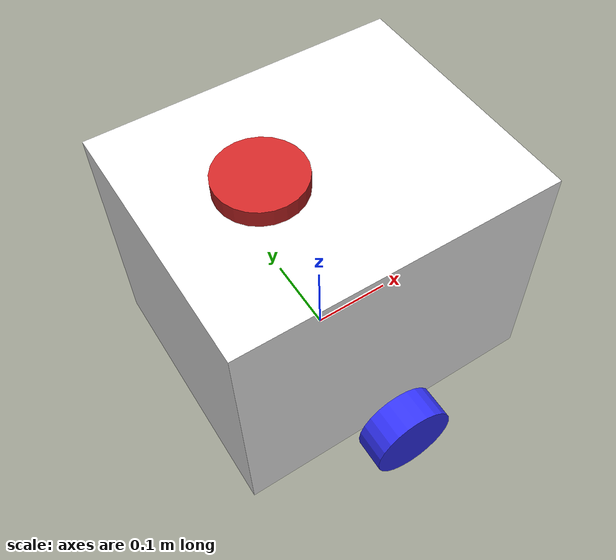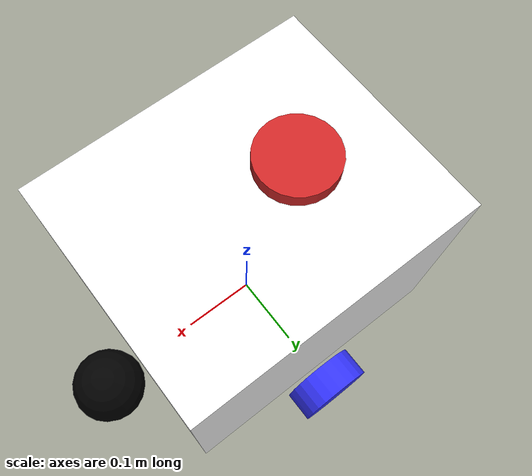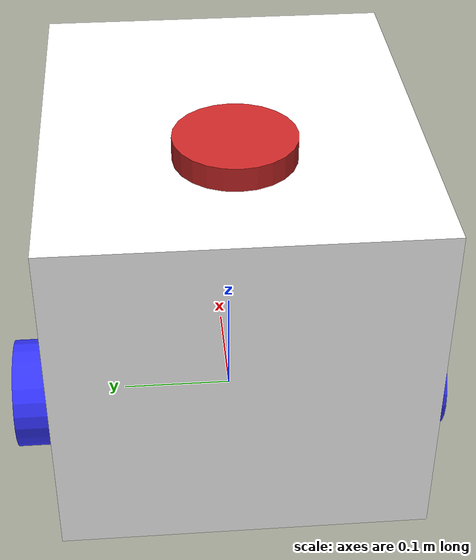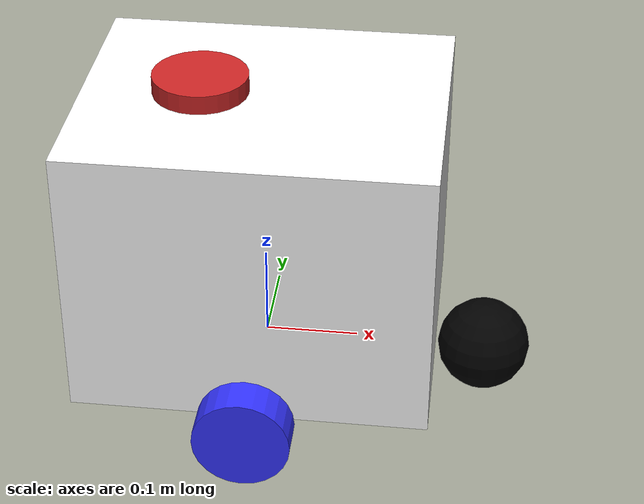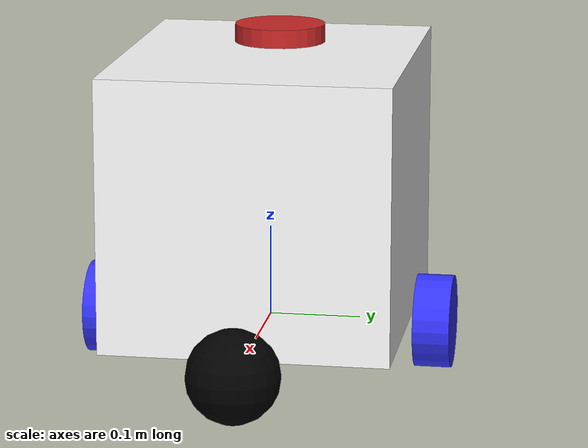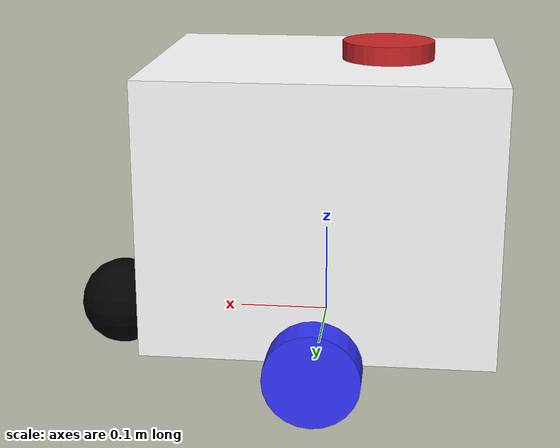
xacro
<?xml version="1.0"?>
<robot xmlns:xacro="http://www.ros.org/wiki/xacro" >

    <xacro:include filename="inertial_macros.xacro"/>

    <material name="white">
        <color rgba="1 1 1 1" />
    </material>

    <material name="orange">
        <color rgba="1 0.3 0.1 1"/>
    </material>

    <material name="blue">
        <color rgba="0.2 0.2 1 1"/>
    </material>

    <material name="black">
        <color rgba="0 0 0 1"/>
    </material>

    <!-- BASE LINK -->

    <link name="base_link">

    </link>

    <joint name="base_footprint_joint" type="fixed">
        <parent link="base_link"/>
        <child link="base_footprint"/>
        <origin xyz="0 0 0" rpy="0 0 0"/>
    </joint>

    <link name="base_footprint">
    </link>

    <!-- CHASSIS LINK -->

    <joint name="chassis_joint" type="fixed">
        <parent link="base_link"/>
        <child link="chassis"/>
        <origin xyz="0 0 0"/>
    </joint>

    <link name="chassis">
        <visual>
            <origin xyz="0 0 0.1475"/>
            <geometry>
                <box size="0.375 0.31 0.295"/>
            </geometry>
            <material name="white"/>
        </visual>
        <collision>
            <origin xyz="0 0 0.1475"/>
            <geometry>
                <box size="0.375 0.31 0.295"/>
            </geometry>
        </collision>
        <xacro:inertial_box mass="0.5" x="0.3" y="0.3" z="0.15">
            <origin xyz="0.15 0 0.075" rpy="0 0 0"/>
        </xacro:inertial_box>
    </link>

    <!-- LEFT WHEEL LINK -->

    <joint name="left_wheel_joint" type="continuous">
        <parent link="base_link"/>
        <child link="left_wheel"/>
        <origin xyz="0 0.183 0" rpy="-${pi/2} 0 0" />
        <axis xyz="0 0 1"/>
    </joint>

    <link name="left_wheel">
        <visual>
            <geometry>
                <cylinder radius="0.0508" length="0.04"/>
            </geometry>
            <material name="blue"/>
        </visual>
        <collision>
            <geometry>
                <cylinder radius="0.0508" length="0.04"/>
            </geometry>
        </collision>
        <xacro:inertial_cylinder mass="0.1" length="0.04" radius="0.0508">
            <origin xyz="0 0 0" rpy="0 0 0"/>
        </xacro:inertial_cylinder>
    </link>

    <!-- RIGHT WHEEL LINK -->

    <joint name="right_wheel_joint" type="continuous">
        <parent link="base_link"/>
        <child link="right_wheel"/>
        <origin xyz="0 -0.183 0" rpy="${pi/2} 0 0" />
        <axis xyz="0 0 -1"/>
    </joint>

    <link name="right_wheel">
        <visual>
            <geometry>
                <cylinder radius="0.0508" length="0.04"/>
            </geometry>
            <material name="blue"/>
        </visual>
        <collision>
            <geometry>
                <cylinder radius="0.0508" length="0.04"/>
            </geometry>
        </collision>
        <xacro:inertial_cylinder mass="0.1" length="0.04" radius="0.0508">
            <origin xyz="0 0 0" rpy="0 0 0"/>
        </xacro:inertial_cylinder>
    </link>

    <!-- CASTER WHEEL LINK -->

    <joint name="caster_wheel_joint" type="fixed">
        <parent link="chassis"/>
        <child link="caster_wheel"/>
        <origin xyz="0.24 0 0"/>
    </joint>

    <link name="caster_wheel">
        <visual>
            <geometry>
                <sphere radius="0.05"/>
            </geometry>
            <material name="black"/>
        </visual>
        <collision>
            <geometry>
                <sphere radius="0.05"/>
            </geometry>
        </collision>
        <xacro:inertial_sphere mass="0.1" radius="0.05">
            <origin xyz="0 0 0" rpy="0 0 0"/>
        </xacro:inertial_sphere>
    </link>

   <joint name="laser_joint" type="fixed">
        <parent link="chassis"/>
        <child link="laser_frame"/>
        <origin xyz="-0.065 0 0.295" rpy="0 0 0"/>
    </joint>

    <link name="laser_frame">
        <visual>
            <geometry>
                <cylinder radius="0.05" length="0.04"/>
            </geometry>
            <material name="red"/>
        </visual>
        <collision>
            <geometry>
                <cylinder radius="0.05" length="0.04"/>
            </geometry>
        </collision>
        <xacro:inertial_cylinder mass="0.1" length="0.04" radius="0.05">
            <origin xyz="0 0 0" rpy="0 0 0"/>
        </xacro:inertial_cylinder>
    </link>

    <gazebo reference="laser_frame">
        <material>Gazebo/Red</material>

        <sensor name="laser" type="ray">
            <pose> 0 0 0 0 0 0 </pose>
            <visualize>true</visualize>
            <update_rate>10</update_rate>
            <ray>
                <scan>
                    <horizontal>
                        <samples>360</samples>
                        <min_angle>-3.14</min_angle>
                        <max_angle>3.14</max_angle>
                    </horizontal>
                </scan>
                <range>
                    <min>0.3</min>
                    <max>12</max>
                </range>
            </ray>
            <plugin name="laser_controller" filename="libgazebo_ros_ray_sensor.so">
                <ros>
                    <argument>~/out:=scan</argument>
                </ros>
                <output_type>sensor_msgs/LaserScan</output_type>
                <frame_name>laser_frame</frame_name>
            </plugin>
        </sensor>
    </gazebo>

    <gazebo reference="caster_wheel">

        <mu1 value="0.001"/>
        <mu2 value="0.001"/>

    </gazebo>

      <ros2_control name="GazeboSystem" type="system">
    <hardware>
      <plugin>gazebo_ros2_control/GazeboSystem</plugin>
    </hardware>
    <joint name="left_wheel_joint">
      <command_interface name="velocity"/>
      <state_interface name="position"/>
      <state_interface name="velocity"/>
    </joint>
    <joint name="right_wheel_joint">
      <command_interface name="velocity"/>
      <state_interface name="position"/>
      <state_interface name="velocity"/>
    </joint>
  </ros2_control>

  <gazebo>
    <static>false</static>
    <plugin name="gazebo_ros2_control" filename="libgazebo_ros2_control.so">
      <parameters>$(find main_logic_controller)/config/my_controllers.yaml</parameters>
    </plugin>
  </gazebo>

</robot>
